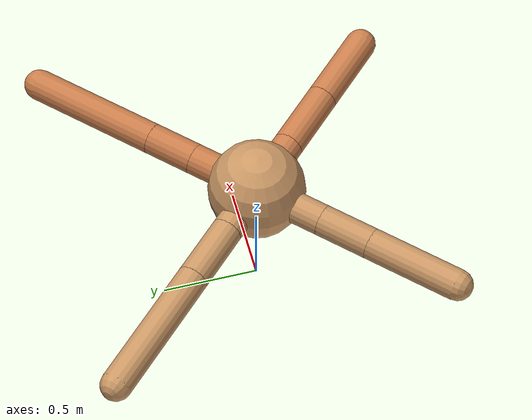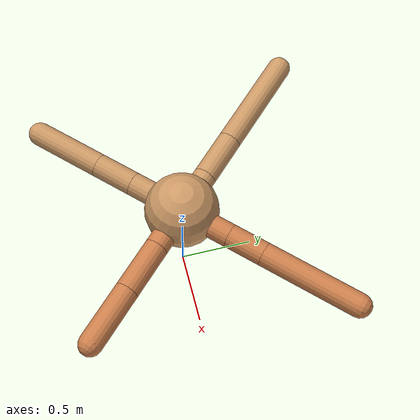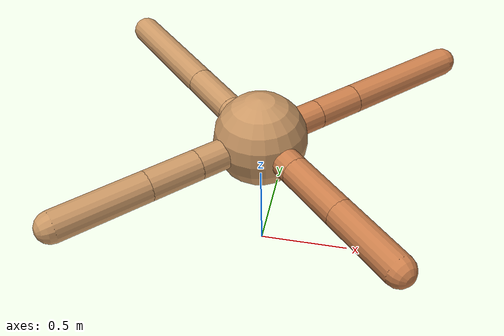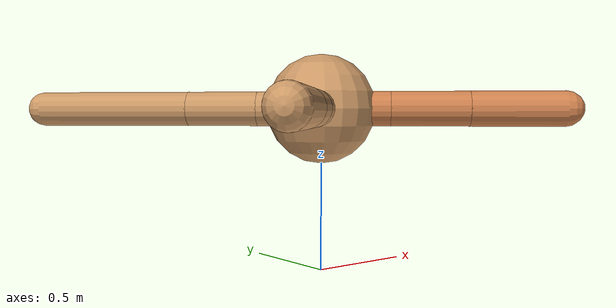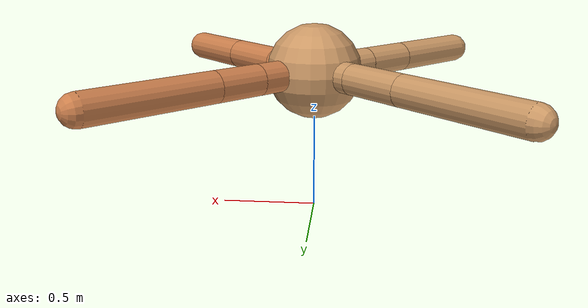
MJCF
<mujoco model="ant">
  <compiler angle="degree" coordinate="local" inertiafromgeom="true" />
  <option integrator="RK4" timestep="0.01" />
  <custom>
    <numeric data="0.0 0.0 0.55 1.0 0.0 0.0 0.0 0.0 1.0 0.0 -1.0 0.0 -1.0 0.0 1.0" name="init_qpos" />
  </custom>
  <default>
    <joint armature="1" damping="1" limited="true" />
    <geom conaffinity="0" condim="3" density="5.0" friction="1.5 0.1 0.1" margin="0.01" rgba="0.8 0.6 0.4 1" />
  </default>
  <worldbody>
    <body name="torso" pos="0 0 0.75">
      <geom name="torso_geom" pos="0 0 0" size="0.25" type="sphere" />

      <body name="front_left_leg" pos="0 0 0">
        <geom fromto="0.0 0.0 0.0 0.2592460918233976 0.2592460918233976 0.0" name="aux_1_geom" size="0.08" type="capsule" rgba=".8 .5 .3 1" />
        <body name="aux_1" pos="0.2592460918233976 0.2592460918233976 0.0">
          <joint axis="0 0 1" name="hip_1" pos="0.0 0.0 0.0" range="-40 40" type="hinge" />
          <geom fromto="0.0 0.0 0.0 0.17828013540972032 0.17828013540972032 0.0" name="left_leg_geom" size="0.08" type="capsule" rgba=".8 .5 .3 1" />
          <body pos="0.17828013540972032 0.17828013540972032 0.0" name="front_left_foot">
            <joint axis="-1 1 0" name="ankle_1" pos="0.0 0.0 0.0" range="30 100" type="hinge" />
            <geom fromto="0.0 0.0 0.0 0.484510582810781 0.484510582810781 0.0" name="left_ankle_geom" size="0.08" type="capsule" rgba=".8 .5 .3 1" />
          </body>
        </body>
      </body>
      <body name="front_right_leg" pos="0 0 0">
        <geom fromto="0.0 0.0 0.0 -0.20862513789358897 0.20862513789358897 0.0" name="aux_2_geom" size="0.08" type="capsule" />
        <body name="aux_2" pos="-0.20862513789358897 0.20862513789358897 0.0">
          <joint axis="0 0 1" name="hip_2" pos="0.0 0.0 0.0" range="-40 40" type="hinge" />
          <geom fromto="0.0 0.0 0.0 -0.23186261385117446 0.23186261385117446 0.0" name="right_leg_geom" size="0.08" type="capsule" />
          <body pos="-0.23186261385117446 0.23186261385117446 0.0" name="front_right_foot">
            <joint axis="1 1 0" name="ankle_2" pos="0.0 0.0 0.0" range="-100 -30" type="hinge" />
            <geom fromto="0.0 0.0 0.0 -0.5016840691327297 0.5016840691327297 0.0" name="right_ankle_geom" size="0.08" type="capsule" />
          </body>
        </body>
      </body>
      <body name="left_back_leg" pos="0 0 0">
        <geom fromto="0.0 0.0 0.0 -0.2684555455965096 -0.2684555455965096 0.0" name="aux_3_geom" size="0.08" type="capsule" />
        <body name="aux_3" pos="-0.2684555455965096 -0.2684555455965096 0.0">
          <joint axis="0 0 1" name="hip_3" pos="0.0 0.0 0.0" range="-40 40" type="hinge" />
          <geom fromto="0.0 0.0 0.0 -0.19561089460751419 -0.19561089460751419 0.0" name="back_leg_geom" size="0.08" type="capsule" />
          <body pos="-0.19561089460751419 -0.19561089460751419 0.0" name="left_back_foot">
            <joint axis="-1 1 0" name="ankle_3" pos="0.0 0.0 0.0" range="-100 -30" type="hinge" />
            <geom fromto="0.0 0.0 0.0 -0.34204589726215706 -0.34204589726215706 0.0" name="third_ankle_geom" size="0.08" type="capsule" />
          </body>
        </body>
      </body>
      <body name="right_back_leg" pos="0 0 0">
        <geom fromto="0.0 0.0 0.0 0.22377124642517945 -0.22377124642517945 0.0" name="aux_4_geom" size="0.08" type="capsule" rgba=".8 .5 .3 1" />
        <body name="aux_4" pos="0.22377124642517945 -0.22377124642517945 0.0">
          <joint axis="0 0 1" name="hip_4" pos="0.0 0.0 0.0" range="-40 40" type="hinge" />
          <geom fromto="0.0 0.0 0.0 0.24794225384473045 -0.24794225384473045 0.0" name="rightback_leg_geom" size="0.08" type="capsule" rgba=".8 .5 .3 1" />
          <body pos="0.24794225384473045 -0.24794225384473045 0.0" name="right_back_foot">
            <joint axis="1 1 0" name="ankle_4" pos="0.0 0.0 0.0" range="30 100" type="hinge" />
            <geom fromto="0.0 0.0 0.0 0.29095222367476786 -0.29095222367476786 0.0" name="fourth_ankle_geom" size="0.08" type="capsule" rgba=".8 .5 .3 1" />
          </body>
        </body>
      </body>
    </body>
  </worldbody>
  <actuator>
    <motor ctrllimited="true" ctrlrange="-1.0 1.0" joint="hip_4" gear="150" />
    <motor ctrllimited="true" ctrlrange="-1.0 1.0" joint="ankle_4" gear="150" />
    <motor ctrllimited="true" ctrlrange="-1.0 1.0" joint="hip_1" gear="150" />
    <motor ctrllimited="true" ctrlrange="-1.0 1.0" joint="ankle_1" gear="150" />
    <motor ctrllimited="true" ctrlrange="-1.0 1.0" joint="hip_2" gear="150" />
    <motor ctrllimited="true" ctrlrange="-1.0 1.0" joint="ankle_2" gear="150" />
    <motor ctrllimited="true" ctrlrange="-1.0 1.0" joint="hip_3" gear="150" />
    <motor ctrllimited="true" ctrlrange="-1.0 1.0" joint="ankle_3" gear="150" />
  </actuator>
</mujoco>
